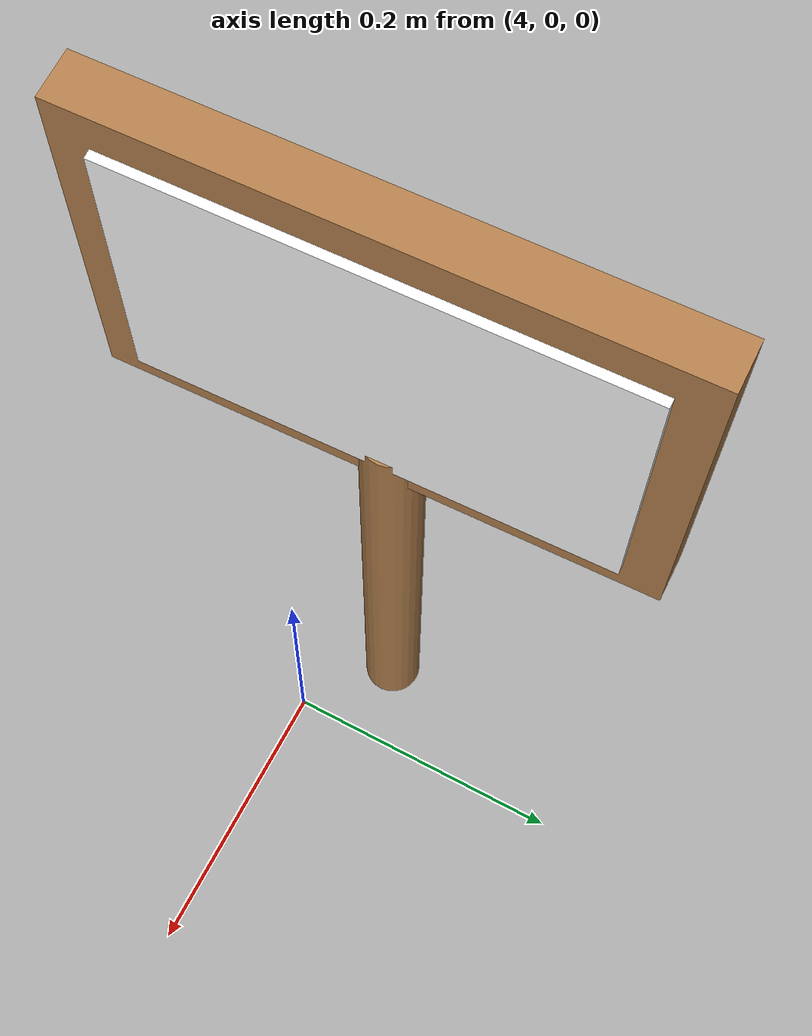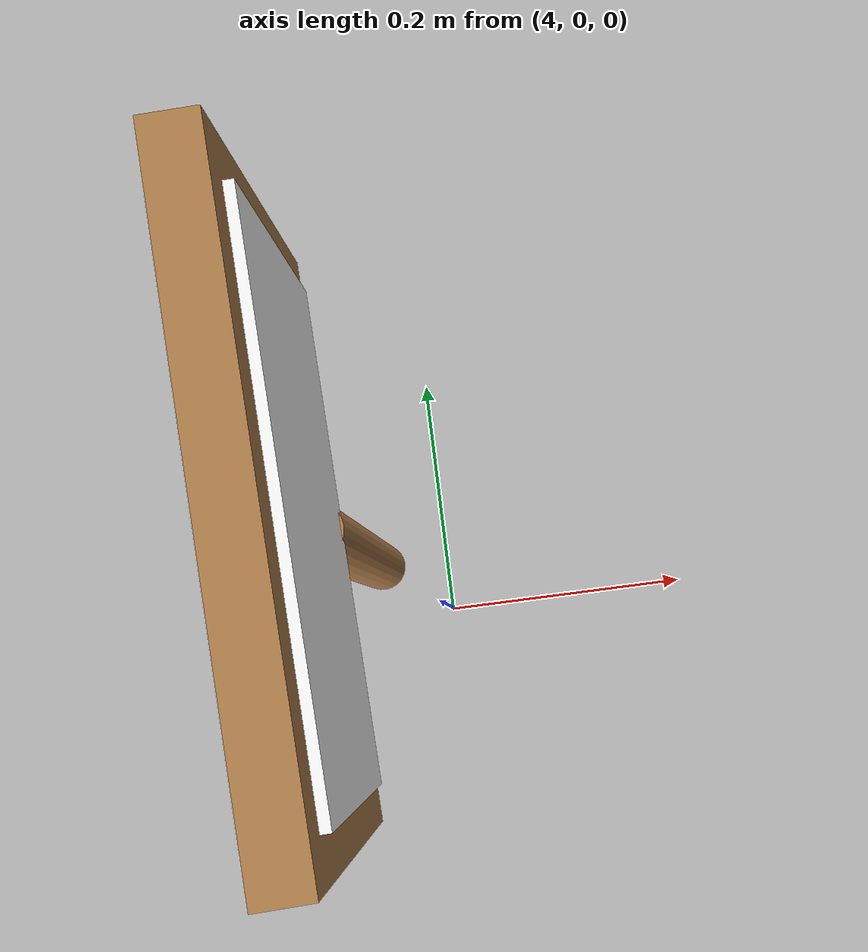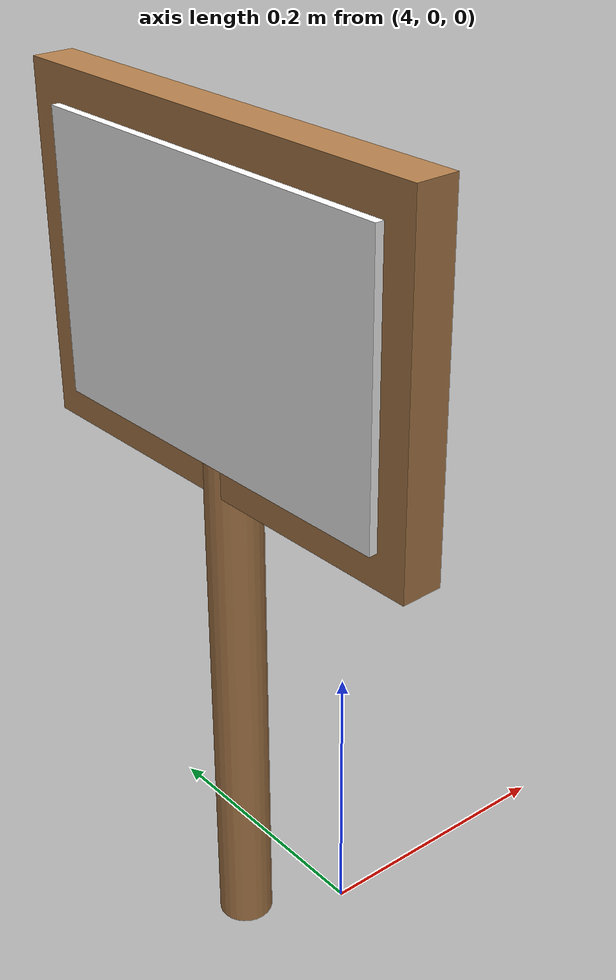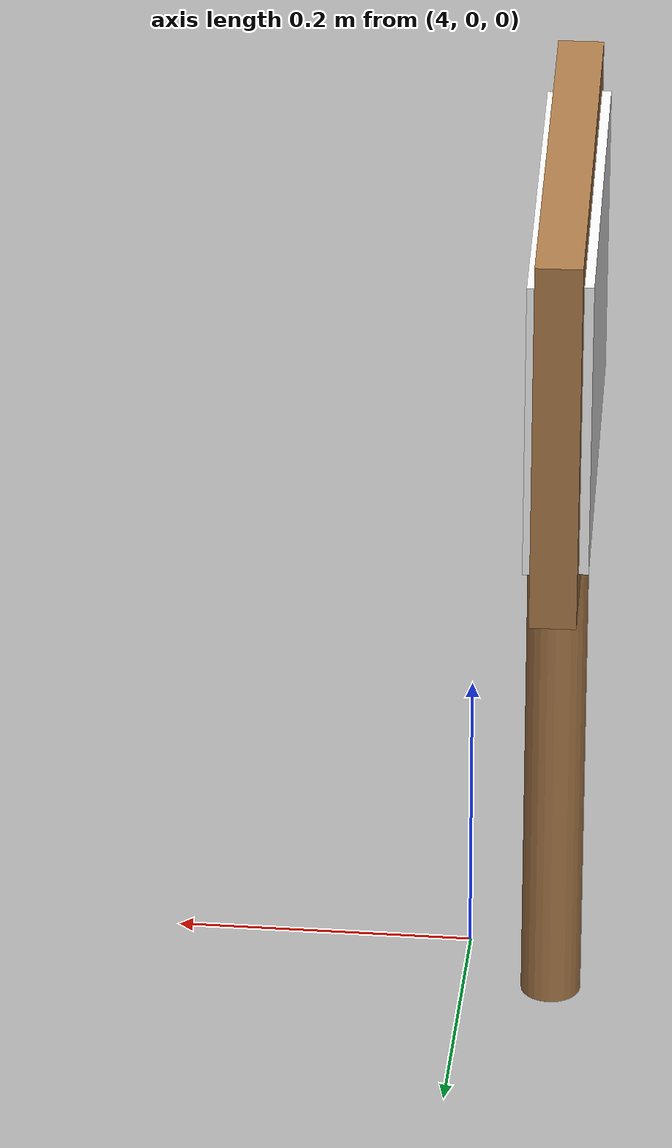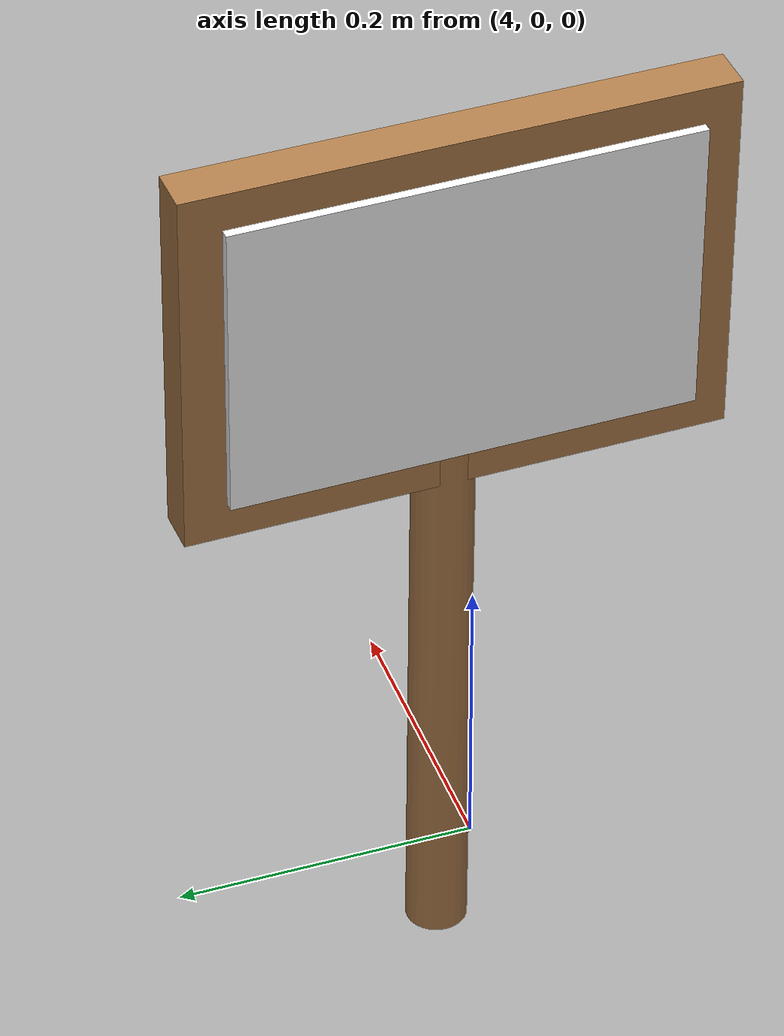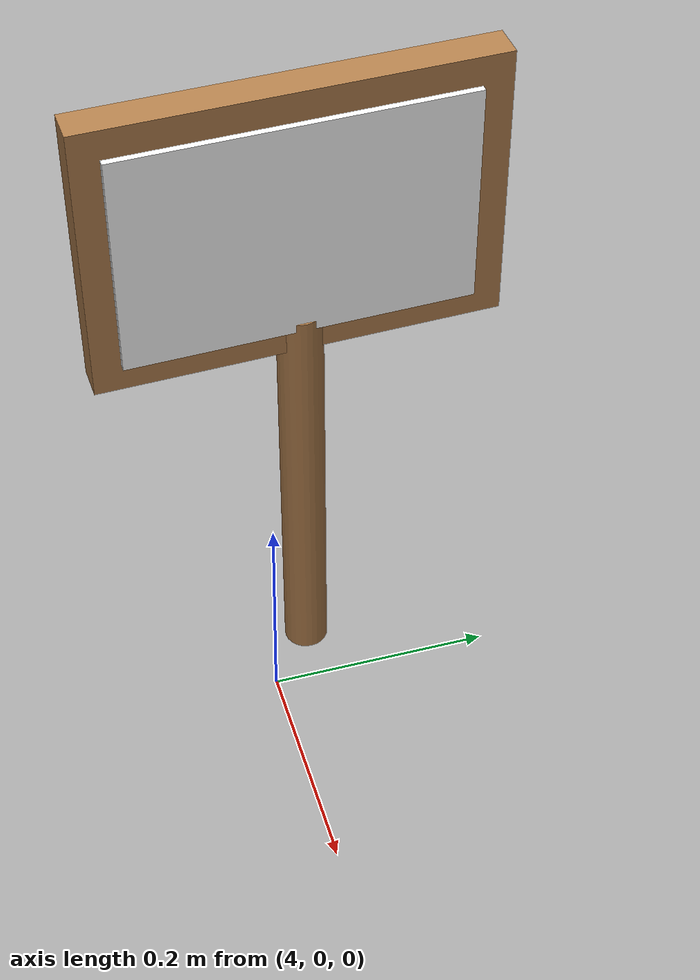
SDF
<sdf version="1.6">
 <world name="default">
  <model name="arrow_wood_thin">
   <link name="link_0">
    <inertial>
     <mass>1</mass>
     <inertia><ixx>0.145833</ixx><ixy>0</ixy><ixz>0</ixz><iyy>0.145833</iyy><iyz>0</iyz><izz>0.125</izz></inertia>
    </inertial>
    <pose>-0.017932 0.660168 -0.097628 0 -0 0</pose>
    <visual name="visual">
     <geometry><cylinder><radius>0.02</radius><length>0.4</length></cylinder></geometry>
     <material>
      <lighting>1</lighting>
      <script><uri>file://media/materials/scripts/gazebo.material</uri><name>Gazebo/Wood</name></script>
      <shader type="vertex"><normal_map>__default__</normal_map></shader>
      <ambient>0.3 0.3 0.3 1</ambient>
      <diffuse>0.7 0.7 0.7 1</diffuse>
      <specular>0.01 0.01 0.01 1</specular>
      <emissive>0 0 0 1</emissive>
     </material>
    </visual>
    <collision name="collision">
     <geometry><cylinder><radius>0.02</radius><length>0.4</length></cylinder></geometry>
     <surface>
      <friction>
       <ode><mu>1</mu><mu2>1</mu2><fdir1>0 0 0</fdir1><slip1>0</slip1><slip2>0</slip2></ode>
       <torsional>
        <coefficient>1</coefficient>
        <patch_radius>0</patch_radius>
        <surface_radius>0</surface_radius>
        <use_patch_radius>1</use_patch_radius>
        <ode><slip>0</slip></ode>
       </torsional>
      </friction>
      <bounce><restitution_coefficient>0</restitution_coefficient><threshold>1e+06</threshold></bounce>
      <contact>
       <collide_without_contact>0</collide_without_contact>
       <collide_without_contact_bitmask>1</collide_without_contact_bitmask>
       <collide_bitmask>1</collide_bitmask>
       <ode>
        <soft_cfm>0</soft_cfm>
        <soft_erp>0.2</soft_erp>
        <kp>1e+13</kp>
        <kd>1</kd>
        <max_vel>0.01</max_vel>
        <min_depth>0</min_depth>
       </ode>
       <bullet>
        <split_impulse>1</split_impulse>
        <split_impulse_penetration_threshold>-0.01</split_impulse_penetration_threshold>
        <soft_cfm>0</soft_cfm>
        <soft_erp>0.2</soft_erp>
        <kp>1e+13</kp>
        <kd>1</kd>
       </bullet>
      </contact>
     </surface>
    </collision>
   </link>
   <link name="link_1">
    <inertial>
     <mass>2.44097</mass>
     <inertia>
      <ixx>0.0264439</ixx>
      <ixy>0</ixy>
      <ixz>0</ixz>
      <iyy>0.0111671</iyy>
      <iyz>0</iyz>
      <izz>0.0213378</izz>
     </inertia>
    </inertial>
    <pose>-0.025899 0.66382 0.194379 0 -0 0</pose>
    <visual name="visual">
     <geometry><box><size>0.02 0.3 0.2</size></box></geometry>
     <material>
      <script><uri>file://scripts</uri><uri>file://textures</uri><name>arrow/standard</name></script>
      <emissive>0 0 0 1</emissive>
      <shader type="vertex"><normal_map>__default__</normal_map></shader>
      <ambient>1 1 1 1</ambient>
      <diffuse>1 1 1 1</diffuse>
      <specular>0 0 0 1</specular>
     </material>
    </visual>
    <collision name="collision">
     <geometry><box><size>0.02 0.3 0.2</size></box></geometry>
     <surface>
      <friction>
       <ode><mu>1</mu><mu2>1</mu2><fdir1>0 0 0</fdir1><slip1>0</slip1><slip2>0</slip2></ode>
       <torsional>
        <coefficient>1</coefficient>
        <patch_radius>0</patch_radius>
        <surface_radius>0</surface_radius>
        <use_patch_radius>1</use_patch_radius>
        <ode><slip>0</slip></ode>
       </torsional>
      </friction>
      <bounce><restitution_coefficient>0</restitution_coefficient><threshold>1e+06</threshold></bounce>
      <contact>
       <collide_without_contact>0</collide_without_contact>
       <collide_without_contact_bitmask>1</collide_without_contact_bitmask>
       <collide_bitmask>1</collide_bitmask>
       <ode>
        <soft_cfm>0</soft_cfm>
        <soft_erp>0.2</soft_erp>
        <kp>1e+13</kp>
        <kd>1</kd>
        <max_vel>0.01</max_vel>
        <min_depth>0</min_depth>
       </ode>
       <bullet>
        <split_impulse>1</split_impulse>
        <split_impulse_penetration_threshold>-0.01</split_impulse_penetration_threshold>
        <soft_cfm>0</soft_cfm>
        <soft_erp>0.2</soft_erp>
        <kp>1e+13</kp>
        <kd>1</kd>
       </bullet>
      </contact>
     </surface>
    </collision>
   </link>
   <link name="link_1_clone">
    <inertial>
     <mass>1</mass>
     <inertia>
      <ixx>0.166667</ixx>
      <ixy>0</ixy>
      <ixz>0</ixz>
      <iyy>0.166667</iyy>
      <iyz>0</iyz>
      <izz>0.166667</izz>
     </inertia>
    </inertial>
    <pose>-0.015207 0.663184 0.195267 0 -0 0</pose>
    <visual name="visual">
     <geometry><box><size>0.03 0.35 0.25</size></box></geometry>
     <material>
      <script><uri>file://scripts</uri><uri>file://textures</uri><name>Gazebo/Wood</name></script>
      <shader type="vertex"><normal_map>__default__</normal_map></shader>
      <ambient>1 1 1 1</ambient>
      <diffuse>1 1 1 1</diffuse>
      <specular>0 0 0 1</specular>
      <emissive>0 0 0 1</emissive>
     </material>
    </visual>
    <collision name="collision">
     <geometry><box><size>0.03 0.35 0.25</size></box></geometry>
     <surface>
      <friction>
       <ode><mu>1</mu><mu2>1</mu2><fdir1>0 0 0</fdir1><slip1>0</slip1><slip2>0</slip2></ode>
       <torsional>
        <coefficient>1</coefficient>
        <patch_radius>0</patch_radius>
        <surface_radius>0</surface_radius>
        <use_patch_radius>1</use_patch_radius>
        <ode><slip>0</slip></ode>
       </torsional>
      </friction>
      <bounce><restitution_coefficient>0</restitution_coefficient><threshold>1e+06</threshold></bounce>
      <contact>
       <collide_without_contact>0</collide_without_contact>
       <collide_without_contact_bitmask>1</collide_without_contact_bitmask>
       <collide_bitmask>1</collide_bitmask>
       <ode>
        <soft_cfm>0</soft_cfm>
        <soft_erp>0.2</soft_erp>
        <kp>1e+13</kp>
        <kd>1</kd>
        <max_vel>0.01</max_vel>
        <min_depth>0</min_depth>
       </ode>
       <bullet>
        <split_impulse>1</split_impulse>
        <split_impulse_penetration_threshold>-0.01</split_impulse_penetration_threshold>
        <soft_cfm>0</soft_cfm>
        <soft_erp>0.2</soft_erp>
        <kp>1e+13</kp>
        <kd>1</kd>
       </bullet>
      </contact>
     </surface>
    </collision>
   </link>
   <link name="link_1_clone_0">
    <inertial>
     <mass>0.516012</mass>
     <inertia>
      <ixx>0.00559013</ixx>
      <ixy>0</ixy>
      <ixz>0</ixz>
      <iyy>0.00174866</iyy>
      <iyz>0</iyz>
      <izz>0.00389871</izz>
     </inertia>
    </inertial>
    <pose>-0.00403 0.665261 0.195247 0 -0 0</pose>
    <visual name="visual">
     <geometry><box><size>0.02 0.3 0.2</size></box></geometry>
     <material>
      <script><uri>file://scripts</uri><uri>file://textures</uri><name>arrow/standard_opp</name></script>
      <emissive>0 0 0 1</emissive>
      <shader type="vertex"><normal_map>__default__</normal_map></shader>
      <ambient>1 1 1 1</ambient>
      <diffuse>1 1 1 1</diffuse>
      <specular>0 0 0 1</specular>
     </material>
    </visual>
    <collision name="collision">
     <geometry><box><size>0.02 0.3 0.2</size></box></geometry>
     <surface>
      <friction>
       <ode><mu>1</mu><mu2>1</mu2><fdir1>0 0 0</fdir1><slip1>0</slip1><slip2>0</slip2></ode>
       <torsional>
        <coefficient>1</coefficient>
        <patch_radius>0</patch_radius>
        <surface_radius>0</surface_radius>
        <use_patch_radius>1</use_patch_radius>
        <ode><slip>0</slip></ode>
       </torsional>
      </friction>
      <bounce><restitution_coefficient>0</restitution_coefficient><threshold>1e+06</threshold></bounce>
      <contact>
       <collide_without_contact>0</collide_without_contact>
       <collide_without_contact_bitmask>1</collide_without_contact_bitmask>
       <collide_bitmask>1</collide_bitmask>
       <ode>
        <soft_cfm>0</soft_cfm>
        <soft_erp>0.2</soft_erp>
        <kp>1e+13</kp>
        <kd>1</kd>
        <max_vel>0.01</max_vel>
        <min_depth>0</min_depth>
       </ode>
       <bullet>
        <split_impulse>1</split_impulse>
        <split_impulse_penetration_threshold>-0.01</split_impulse_penetration_threshold>
        <soft_cfm>0</soft_cfm>
        <soft_erp>0.2</soft_erp>
        <kp>1e+13</kp>
        <kd>1</kd>
       </bullet>
      </contact>
     </surface>
    </collision>
   </link>
   <joint name="link_0_JOINT_0" type="fixed">
    <parent>link_0</parent>
    <child>link_1</child>
    <physics>
     <ode><limit><cfm>0</cfm><erp>0.2</erp></limit><suspension><cfm>0</cfm><erp>0.2</erp></suspension></ode>
    </physics>
   </joint>
   <joint name="link_1_JOINT_0_0" type="fixed">
    <parent>link_1</parent>
    <child>link_1_clone_0</child>
    <physics>
     <ode><limit><cfm>0</cfm><erp>0.2</erp></limit><suspension><cfm>0</cfm><erp>0.2</erp></suspension></ode>
    </physics>
   </joint>
   <joint name="link_1_JOINT_0" type="fixed">
    <parent>link_1</parent>
    <child>link_1_clone</child>
    <physics>
     <ode><limit><cfm>0</cfm><erp>0.2</erp></limit><suspension><cfm>0</cfm><erp>0.2</erp></suspension></ode>
    </physics>
   </joint>
   <static>0</static>
   <pose>3.90005 0.701271 0.297351 -0.009234 0.002967 -3.10688</pose>
  </model>
 </world>
</sdf>
